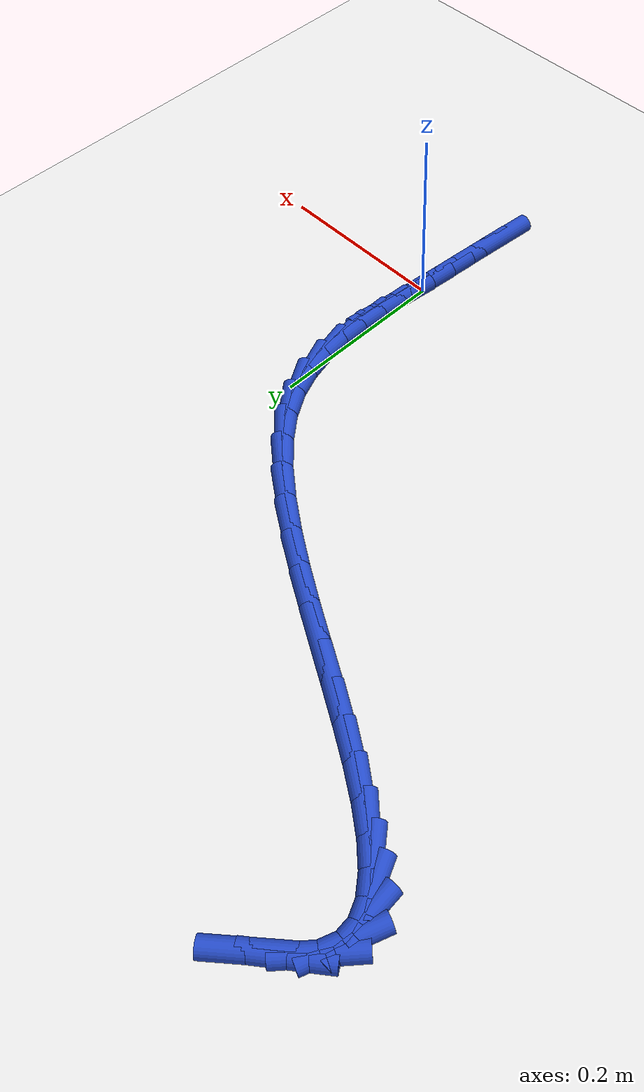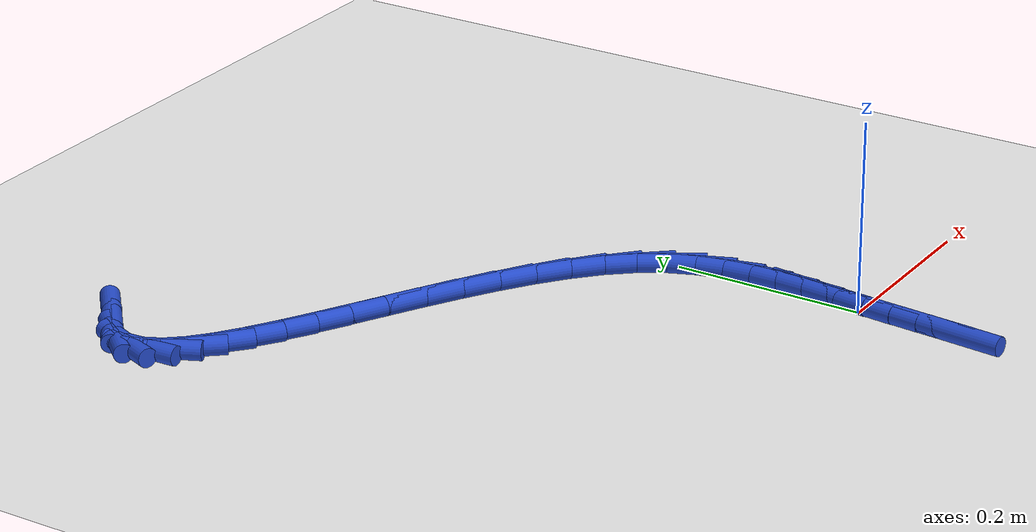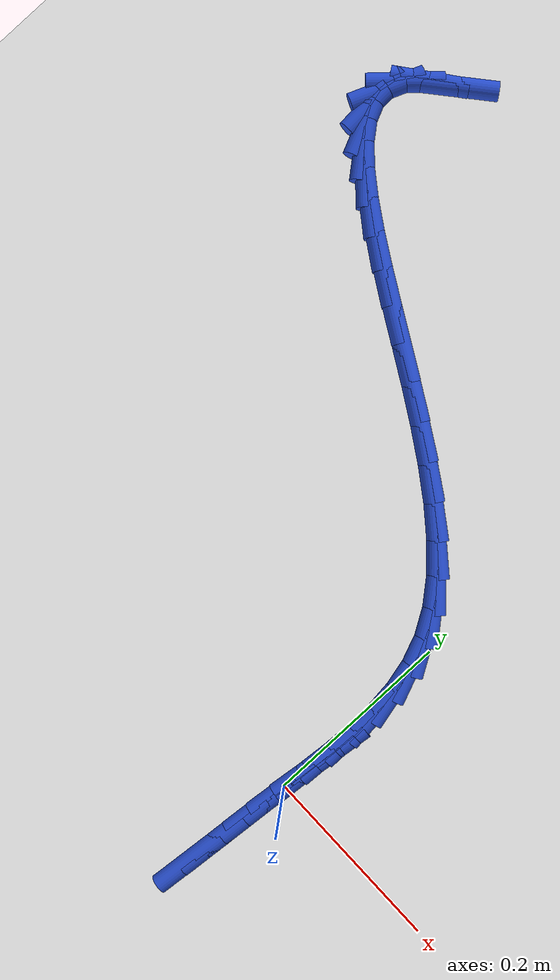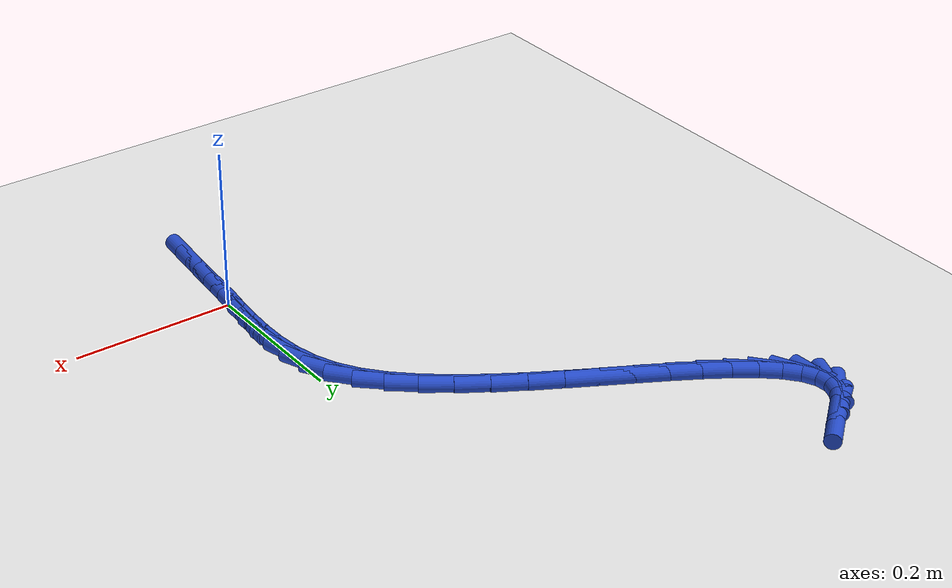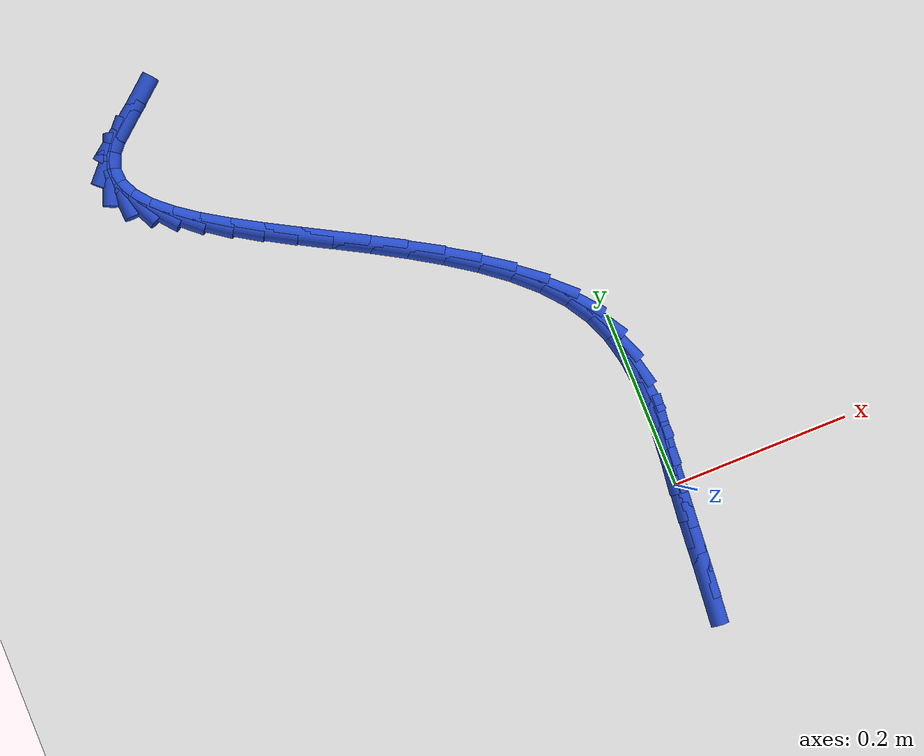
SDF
<sdf version="1.6">
 <world name="default">
  <model name="ground_plane">
   <static>1</static>
   <link name="link">
    <collision name="collision">
     <geometry><plane><normal>0 0 1</normal><size>100 100</size></plane></geometry>
     <surface><friction><ode><mu>100</mu><mu2>50</mu2></ode></friction></surface>
    </collision>
    <visual name="visual">
     <cast_shadows>0</cast_shadows>
     <geometry><plane><normal>0 0 1</normal><size>100 100</size></plane></geometry>
     <material>
      <script><uri>file://media/materials/scripts/gazebo.material</uri><name>Gazebo/WhiteGlow</name></script>
     </material>
    </visual>
   </link>
  </model>
  <model name="line">
   <link name="link_0">
    <pose>7.806255641895632e-18 3.469446951953614e-17 0.01 0 1.57 1.4746402180226061</pose>
    <collision name="collision">
     <geometry><cylinder><radius>0.01</radius><length>0.08</length></cylinder></geometry>
    </collision>
    <visual name="visual">
     <material>
      <script><name>Gazebo/Blue</name><uri>file://media/materials/scripts/gazebo.material</uri></script>
     </material>
     <geometry><cylinder><radius>0.01</radius><length>0.08</length></cylinder></geometry>
    </visual>
   </link>
   <link name="link_1">
    <pose>0.0028988721180131347 0.030054588540749792 0.01 0 1.57 1.487445917077449</pose>
    <collision name="collision">
     <geometry><cylinder><radius>0.01</radius><length>0.08</length></cylinder></geometry>
    </collision>
    <visual name="visual">
     <material>
      <script><name>Gazebo/Blue</name><uri>file://media/materials/scripts/gazebo.material</uri></script>
     </material>
     <geometry><cylinder><radius>0.01</radius><length>0.08</length></cylinder></geometry>
    </visual>
   </link>
   <link name="link_2">
    <pose>0.005418279549983693 0.06021125345075633 0.01 0 1.57 1.5258591423656978</pose>
    <collision name="collision">
     <geometry><cylinder><radius>0.01</radius><length>0.08</length></cylinder></geometry>
    </collision>
    <visual name="visual">
     <material>
      <script><name>Gazebo/Blue</name><uri>file://media/materials/scripts/gazebo.material</uri></script>
     </material>
     <geometry><cylinder><radius>0.01</radius><length>0.08</length></cylinder></geometry>
    </visual>
   </link>
   <link name="link_3">
    <pose>0.006769807629131971 0.09026694646953276 0.01 0 1.57 -1.5504720018740654</pose>
    <collision name="collision">
     <geometry><cylinder><radius>0.01</radius><length>0.08</length></cylinder></geometry>
    </collision>
    <visual name="visual">
     <material>
      <script><name>Gazebo/Blue</name><uri>file://media/materials/scripts/gazebo.material</uri></script>
     </material>
     <geometry><cylinder><radius>0.01</radius><length>0.08</length></cylinder></geometry>
    </visual>
   </link>
   <link name="link_4">
    <pose>0.006165041688678258 0.1200186193365923 0.01 0 1.57 -1.4567601498223957</pose>
    <collision name="collision">
     <geometry><cylinder><radius>0.01</radius><length>0.08</length></cylinder></geometry>
    </collision>
    <visual name="visual">
     <material>
      <script><name>Gazebo/Blue</name><uri>file://media/materials/scripts/gazebo.material</uri></script>
     </material>
     <geometry><cylinder><radius>0.01</radius><length>0.08</length></cylinder></geometry>
    </visual>
   </link>
   <link name="link_5">
    <pose>0.0028155670618428396 0.14926322379144807 0.01 0 1.57 -1.3341143771628512</pose>
    <collision name="collision">
     <geometry><cylinder><radius>0.01</radius><length>0.08</length></cylinder></geometry>
    </collision>
    <visual name="visual">
     <material>
      <script><name>Gazebo/Blue</name><uri>file://media/materials/scripts/gazebo.material</uri></script>
     </material>
     <geometry><cylinder><radius>0.01</radius><length>0.08</length></cylinder></geometry>
    </visual>
   </link>
   <link name="link_6">
    <pose>-0.0040670309181539965 0.1777977115736131 0.01 0 1.57 -1.1854428714655687</pose>
    <collision name="collision">
     <geometry><cylinder><radius>0.01</radius><length>0.08</length></cylinder></geometry>
    </collision>
    <visual name="visual">
     <material>
      <script><name>Gazebo/Blue</name><uri>file://media/materials/scripts/gazebo.material</uri></script>
     </material>
     <geometry><cylinder><radius>0.01</radius><length>0.08</length></cylinder></geometry>
    </visual>
   </link>
   <link name="link_7">
    <pose>-0.015271166918091945 0.20541903442260076 0.01 0 1.57 -1.019436579250831</pose>
    <collision name="collision">
     <geometry><cylinder><radius>0.01</radius><length>0.08</length></cylinder></geometry>
    </collision>
    <visual name="visual">
     <material>
      <script><name>Gazebo/Blue</name><uri>file://media/materials/scripts/gazebo.material</uri></script>
     </material>
     <geometry><cylinder><radius>0.01</radius><length>0.08</length></cylinder></geometry>
    </visual>
   </link>
   <link name="link_8">
    <pose>-0.03157261234150013 0.23192641308962025 0.01 0 1.57 -0.8655247426187502</pose>
    <collision name="collision">
     <geometry><cylinder><radius>0.01</radius><length>0.08</length></cylinder></geometry>
    </collision>
    <visual name="visual">
     <material>
      <script><name>Gazebo/Blue</name><uri>file://media/materials/scripts/gazebo.material</uri></script>
     </material>
     <geometry><cylinder><radius>0.01</radius><length>0.08</length></cylinder></geometry>
    </visual>
   </link>
   <link name="link_9">
    <pose>-0.053116485852896356 0.2572322478439181 0.01 0 1.57 -0.7487405426597362</pose>
    <collision name="collision">
     <geometry><cylinder><radius>0.01</radius><length>0.08</length></cylinder></geometry>
    </collision>
    <visual name="visual">
     <material>
      <script><name>Gazebo/Blue</name><uri>file://media/materials/scripts/gazebo.material</uri></script>
     </material>
     <geometry><cylinder><radius>0.01</radius><length>0.08</length></cylinder></geometry>
    </visual>
   </link>
   <link name="link_10">
    <pose>-0.07913762132125632 0.2814123023845066 0.01 0 1.57 -0.6625558946643706</pose>
    <collision name="collision">
     <geometry><cylinder><radius>0.01</radius><length>0.08</length></cylinder></geometry>
    </collision>
    <visual name="visual">
     <material>
      <script><name>Gazebo/Blue</name><uri>file://media/materials/scripts/gazebo.material</uri></script>
     </material>
     <geometry><cylinder><radius>0.01</radius><length>0.08</length></cylinder></geometry>
    </visual>
   </link>
   <link name="link_11">
    <pose>-0.10879991081243584 0.30455507191632625 0.01 0 1.57 -0.5996197437714119</pose>
    <collision name="collision">
     <geometry><cylinder><radius>0.01</radius><length>0.08</length></cylinder></geometry>
    </collision>
    <visual name="visual">
     <material>
      <script><name>Gazebo/Blue</name><uri>file://media/materials/scripts/gazebo.material</uri></script>
     </material>
     <geometry><cylinder><radius>0.01</radius><length>0.08</length></cylinder></geometry>
    </visual>
   </link>
   <link name="link_12">
    <pose>-0.14126724639229082 0.32674905164431783 0.01 0 1.57 -0.5546431576381627</pose>
    <collision name="collision">
     <geometry><cylinder><radius>0.01</radius><length>0.08</length></cylinder></geometry>
    </collision>
    <visual name="visual">
     <material>
      <script><name>Gazebo/Blue</name><uri>file://media/materials/scripts/gazebo.material</uri></script>
     </material>
     <geometry><cylinder><radius>0.01</radius><length>0.08</length></cylinder></geometry>
    </visual>
   </link>
   <link name="link_13">
    <pose>-0.17570352012667736 0.3480827367734225 0.01 0 1.57 -0.524147968410505</pose>
    <collision name="collision">
     <geometry><cylinder><radius>0.01</radius><length>0.08</length></cylinder></geometry>
    </collision>
    <visual name="visual">
     <material>
      <script><name>Gazebo/Blue</name><uri>file://media/materials/scripts/gazebo.material</uri></script>
     </material>
     <geometry><cylinder><radius>0.01</radius><length>0.08</length></cylinder></geometry>
    </visual>
   </link>
   <link name="link_14">
    <pose>-0.21127262408145103 0.3686446225085807 0.01 0 1.57 -0.5060991870181922</pose>
    <collision name="collision">
     <geometry><cylinder><radius>0.01</radius><length>0.08</length></cylinder></geometry>
    </collision>
    <visual name="visual">
     <material>
      <script><name>Gazebo/Blue</name><uri>file://media/materials/scripts/gazebo.material</uri></script>
     </material>
     <geometry><cylinder><radius>0.01</radius><length>0.08</length></cylinder></geometry>
    </visual>
   </link>
   <link name="link_15">
    <pose>-0.24713845032246806 0.3885232040547336 0.01 0 1.57 -0.4996696578759354</pose>
    <collision name="collision">
     <geometry><cylinder><radius>0.01</radius><length>0.08</length></cylinder></geometry>
    </collision>
    <visual name="visual">
     <material>
      <script><name>Gazebo/Blue</name><uri>file://media/materials/scripts/gazebo.material</uri></script>
     </material>
     <geometry><cylinder><radius>0.01</radius><length>0.08</length></cylinder></geometry>
    </visual>
   </link>
   <link name="link_16">
    <pose>-0.2824648909155843 0.40780697661682197 0.01 0 1.57 -0.5052018639270373</pose>
    <collision name="collision">
     <geometry><cylinder><radius>0.01</radius><length>0.08</length></cylinder></geometry>
    </collision>
    <visual name="visual">
     <material>
      <script><name>Gazebo/Blue</name><uri>file://media/materials/scripts/gazebo.material</uri></script>
     </material>
     <geometry><cylinder><radius>0.01</radius><length>0.08</length></cylinder></geometry>
    </visual>
   </link>
   <link name="link_17">
    <pose>-0.3164158379266554 0.42658443539978635 0.01 0 1.57 -0.5244235541090694</pose>
    <collision name="collision">
     <geometry><cylinder><radius>0.01</radius><length>0.08</length></cylinder></geometry>
    </collision>
    <visual name="visual">
     <material>
      <script><name>Gazebo/Blue</name><uri>file://media/materials/scripts/gazebo.material</uri></script>
     </material>
     <geometry><cylinder><radius>0.01</radius><length>0.08</length></cylinder></geometry>
    </visual>
   </link>
   <link name="link_18">
    <pose>-0.3481551834215377 0.4449440756085682 0.01 0 1.57 -0.5610528359125257</pose>
    <collision name="collision">
     <geometry><cylinder><radius>0.01</radius><length>0.08</length></cylinder></geometry>
    </collision>
    <visual name="visual">
     <material>
      <script><name>Gazebo/Blue</name><uri>file://media/materials/scripts/gazebo.material</uri></script>
     </material>
     <geometry><cylinder><radius>0.01</radius><length>0.08</length></cylinder></geometry>
    </visual>
   </link>
   <link name="link_19">
    <pose>-0.37684681946608684 0.46297439244810773 0.01 0 1.57 -0.6221052469594506</pose>
    <collision name="collision">
     <geometry><cylinder><radius>0.01</radius><length>0.08</length></cylinder></geometry>
    </collision>
    <visual name="visual">
     <material>
      <script><name>Gazebo/Blue</name><uri>file://media/materials/scripts/gazebo.material</uri></script>
     </material>
     <geometry><cylinder><radius>0.01</radius><length>0.08</length></cylinder></geometry>
    </visual>
   </link>
   <link name="link_20">
    <pose>-0.40165463812615865 0.48076388112334595 0.01 0 1.57 -0.7205261791843238</pose>
    <collision name="collision">
     <geometry><cylinder><radius>0.01</radius><length>0.08</length></cylinder></geometry>
    </collision>
    <visual name="visual">
     <material>
      <script><name>Gazebo/Blue</name><uri>file://media/materials/scripts/gazebo.material</uri></script>
     </material>
     <geometry><cylinder><radius>0.01</radius><length>0.08</length></cylinder></geometry>
    </visual>
   </link>
   <link name="link_21">
    <pose>-0.4217425314676093 0.4984010368392238 0.01 0 1.57 -0.8798504651959707</pose>
    <collision name="collision">
     <geometry><cylinder><radius>0.01</radius><length>0.08</length></cylinder></geometry>
    </collision>
    <visual name="visual">
     <material>
      <script><name>Gazebo/Blue</name><uri>file://media/materials/scripts/gazebo.material</uri></script>
     </material>
     <geometry><cylinder><radius>0.01</radius><length>0.08</length></cylinder></geometry>
    </visual>
   </link>
   <link name="link_22">
    <pose>-0.43627439155629455 0.515974354800682 0.01 0 1.57 -1.137565484481062</pose>
    <collision name="collision">
     <geometry><cylinder><radius>0.01</radius><length>0.08</length></cylinder></geometry>
    </collision>
    <visual name="visual">
     <material>
      <script><name>Gazebo/Blue</name><uri>file://media/materials/scripts/gazebo.material</uri></script>
     </material>
     <geometry><cylinder><radius>0.01</radius><length>0.08</length></cylinder></geometry>
    </visual>
   </link>
   <link name="link_23">
    <pose>-0.4444141104580702 0.5335723302126616 0.01 0 1.57 -1.519378574509934</pose>
    <collision name="collision">
     <geometry><cylinder><radius>0.01</radius><length>0.08</length></cylinder></geometry>
    </collision>
    <visual name="visual">
     <material>
      <script><name>Gazebo/Blue</name><uri>file://media/materials/scripts/gazebo.material</uri></script>
     </material>
     <geometry><cylinder><radius>0.01</radius><length>0.08</length></cylinder></geometry>
    </visual>
   </link>
   <link name="link_24">
    <pose>-0.44532558023879243 0.5512834582801032 0.01 0 1.57 1.1908783359319826</pose>
    <collision name="collision">
     <geometry><cylinder><radius>0.01</radius><length>0.08</length></cylinder></geometry>
    </collision>
    <visual name="visual">
     <material>
      <script><name>Gazebo/Blue</name><uri>file://media/materials/scripts/gazebo.material</uri></script>
     </material>
     <geometry><cylinder><radius>0.01</radius><length>0.08</length></cylinder></geometry>
    </visual>
   </link>
   <link name="link_25">
    <pose>-0.43817269296431705 0.5691962342079477 0.01 0 1.57 0.8480655811776272</pose>
    <collision name="collision">
     <geometry><cylinder><radius>0.01</radius><length>0.08</length></cylinder></geometry>
    </collision>
    <visual name="visual">
     <material>
      <script><name>Gazebo/Blue</name><uri>file://media/materials/scripts/gazebo.material</uri></script>
     </material>
     <geometry><cylinder><radius>0.01</radius><length>0.08</length></cylinder></geometry>
    </visual>
   </link>
   <link name="link_26">
    <pose>-0.4221193407004997 0.5873991532011358 0.01 0 1.57 0.6605520184258402</pose>
    <collision name="collision">
     <geometry><cylinder><radius>0.01</radius><length>0.08</length></cylinder></geometry>
    </collision>
    <visual name="visual">
     <material>
      <script><name>Gazebo/Blue</name><uri>file://media/materials/scripts/gazebo.material</uri></script>
     </material>
     <geometry><cylinder><radius>0.01</radius><length>0.08</length></cylinder></geometry>
    </visual>
   </link>
   <link name="link_27">
    <pose>-0.39830640936015027 0.6059015582609163 0.01 0 1.57 0.7055435479070159</pose>
    <collision name="collision">
     <geometry><cylinder><radius>0.01</radius><length>0.08</length></cylinder></geometry>
    </collision>
    <visual name="visual">
     <material>
      <script><name>Gazebo/Blue</name><uri>file://media/materials/scripts/gazebo.material</uri></script>
     </material>
     <geometry><cylinder><radius>0.01</radius><length>0.08</length></cylinder></geometry>
    </visual>
   </link>
   <link name="link_276">
    <pose>-0.01024442678307534 -0.1176926779732892 0.01 0 1.57 1.4791512976832148</pose>
    <collision name="collision">
     <geometry><cylinder><radius>0.01</radius><length>0.08</length></cylinder></geometry>
    </collision>
    <visual name="visual">
     <material>
      <script><name>Gazebo/Blue</name><uri>file://media/materials/scripts/gazebo.material</uri></script>
     </material>
     <geometry><cylinder><radius>0.01</radius><length>0.08</length></cylinder></geometry>
    </visual>
   </link>
   <link name="link_277">
    <pose>-0.0075706607591721885 -0.0885991595399664 0.01 0 1.57 1.4869899909069355</pose>
    <collision name="collision">
     <geometry><cylinder><radius>0.01</radius><length>0.08</length></cylinder></geometry>
    </collision>
    <visual name="visual">
     <material>
      <script><name>Gazebo/Blue</name><uri>file://media/materials/scripts/gazebo.material</uri></script>
     </material>
     <geometry><cylinder><radius>0.01</radius><length>0.08</length></cylinder></geometry>
    </visual>
   </link>
   <link name="link_278">
    <pose>-0.005110302725309075 -0.05931026152085665 0.01 0 1.57 1.4878458041225366</pose>
    <collision name="collision">
     <geometry><cylinder><radius>0.01</radius><length>0.08</length></cylinder></geometry>
    </collision>
    <visual name="visual">
     <material>
      <script><name>Gazebo/Blue</name><uri>file://media/materials/scripts/gazebo.material</uri></script>
     </material>
     <geometry><cylinder><radius>0.01</radius><length>0.08</length></cylinder></geometry>
    </visual>
   </link>
   <link name="link_279">
    <pose>-0.0026559000245601964 -0.02978940223464014 0.01 0 1.57 1.4818755646164579</pose>
    <collision name="collision">
     <geometry><cylinder><radius>0.01</radius><length>0.08</length></cylinder></geometry>
    </collision>
    <visual name="visual">
     <material>
      <script><name>Gazebo/Blue</name><uri>file://media/materials/scripts/gazebo.material</uri></script>
     </material>
     <geometry><cylinder><radius>0.01</radius><length>0.08</length></cylinder></geometry>
    </visual>
   </link>
   <link name="link_280">
    <pose>2.168404344971009e-17 1.8735013540549517e-16 0.01 0 1.57 1.4693054567476238</pose>
    <collision name="collision">
     <geometry><cylinder><radius>0.01</radius><length>0.08</length></cylinder></geometry>
    </collision>
    <visual name="visual">
     <material>
      <script><name>Gazebo/Blue</name><uri>file://media/materials/scripts/gazebo.material</uri></script>
     </material>
     <geometry><cylinder><radius>0.01</radius><length>0.08</length></cylinder></geometry>
    </visual>
   </link>
   <link name="link_281">
    <pose>0.003064850005297378 0.030094526864384134 0.01 0 1.57 1.4504313081243028</pose>
    <collision name="collision">
     <geometry><cylinder><radius>0.01</radius><length>0.08</length></cylinder></geometry>
    </collision>
    <visual name="visual">
     <material>
      <script><name>Gazebo/Blue</name><uri>file://media/materials/scripts/gazebo.material</uri></script>
     </material>
     <geometry><cylinder><radius>0.01</radius><length>0.08</length></cylinder></geometry>
    </visual>
   </link>
   <link name="link_282">
    <pose>0.006746102648257605 0.060530760039830635 0.01 0 1.57 1.4598051869871924</pose>
    <collision name="collision">
     <geometry><cylinder><radius>0.01</radius><length>0.08</length></cylinder></geometry>
    </collision>
    <visual name="visual">
     <material>
      <script><name>Gazebo/Blue</name><uri>file://media/materials/scripts/gazebo.material</uri></script>
     </material>
     <geometry><cylinder><radius>0.01</radius><length>0.08</length></cylinder></geometry>
    </visual>
   </link>
  </model>
 </world>
</sdf>
